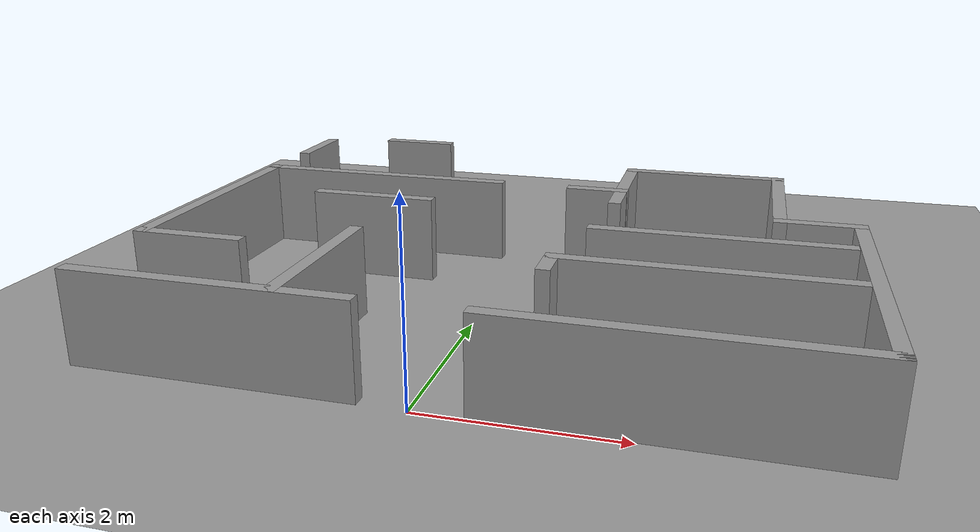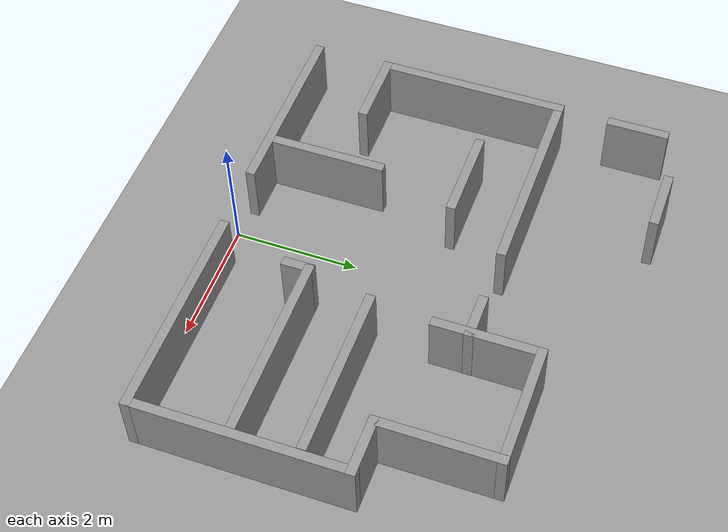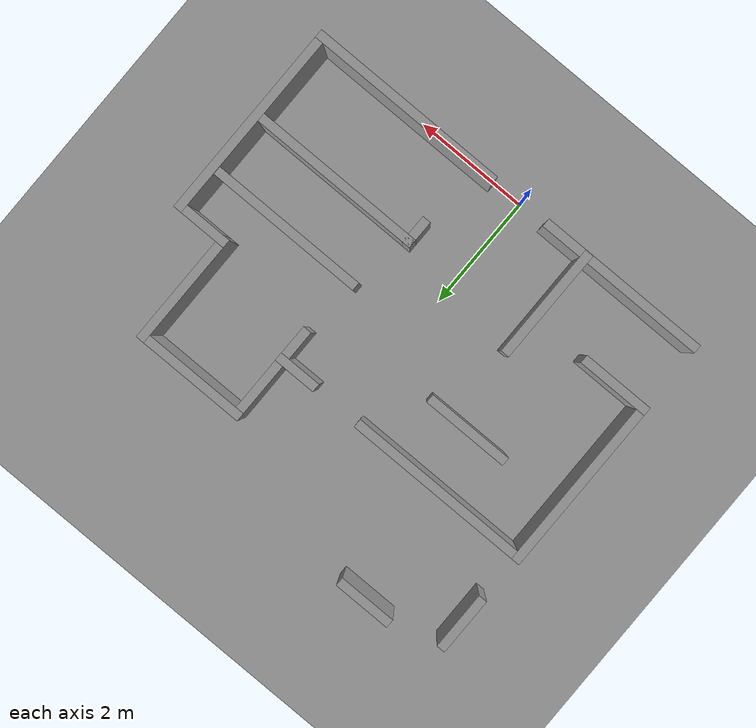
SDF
<sdf version="1.6">
 <world name="default">
  <light name="sun" type="directional">
   <pose>0 0 10 0 -0 0</pose>
   <diffuse>0.8 0.8 0.8 1</diffuse>
   <specular>0.2 0.2 0.2 1</specular>
   <attenuation>
    <range>1000</range>
    <constant>0.9</constant>
    <linear>0.01</linear>
    <quadratic>0.001</quadratic>
   </attenuation>
   <direction>0.5 0.1 -0.9</direction>
  </light>
  <scene><ambient>0.4 0.4 0.4 1</ambient><background>0.7 0.7 0.7 1</background><shadows>1</shadows></scene>
  <physics name="default_physics" default="0" type="ode">
   <max_step_size>0.01</max_step_size>
   <real_time_factor>1</real_time_factor>
   <real_time_update_rate>100</real_time_update_rate>
  </physics>
  <model name="ground_plane_0">
   <static>1</static>
   <link name="link">
    <collision name="collision">
     <geometry><plane><normal>0 0 1</normal><size>100 100</size></plane></geometry>
     <surface><friction><ode><mu>100</mu><mu2>50</mu2></ode></friction></surface>
    </collision>
    <visual name="visual">
     <cast_shadows>0</cast_shadows>
     <geometry><plane><normal>0 0 1</normal><size>100 100</size></plane></geometry>
     <material>
      <script><uri>file://media/materials/scripts/gazebo.material</uri><name>Gazebo/Grey</name></script>
     </material>
    </visual>
    <velocity_decay><linear>0</linear><angular>0</angular></velocity_decay>
   </link>
   <pose>0.497681 0 0 0 -0 0</pose>
  </model>
  <gravity>0 0 -9.8</gravity>
  <magnetic_field>6e-06 2.3e-05 -4.2e-05</magnetic_field>
  <atmosphere type="adiabatic"/>
  <audio><device>default</device></audio>
  <spherical_coordinates>
   <surface_model>EARTH_WGS84</surface_model>
   <latitude_deg>0</latitude_deg>
   <longitude_deg>0</longitude_deg>
   <elevation>0</elevation>
   <heading_deg>0</heading_deg>
  </spherical_coordinates>
  <model name="mapa">
   <pose>0.247355 3.17522 0 0 -0 0</pose>
   <link name="Wall_101">
    <collision name="Wall_101_Collision">
     <geometry><box><size>0.75 0.15 1</size></box></geometry>
     <pose>0 0 0.5 0 -0 0</pose>
    </collision>
    <visual name="Wall_101_Visual">
     <pose>0 0 0.5 0 -0 0</pose>
     <geometry><box><size>0.75 0.15 1</size></box></geometry>
     <material>
      <script><uri>file://media/materials/scripts/gazebo.material</uri><name>Gazebo/Grey</name></script>
      <ambient>1 1 1 1</ambient>
     </material>
     <meta><layer>0</layer></meta>
    </visual>
    <pose>0.701525 1.072 0 0 -0 3.14159</pose>
   </link>
   <link name="Wall_107">
    <collision name="Wall_107_Collision">
     <geometry><box><size>1.25 0.15 1</size></box></geometry>
     <pose>0 0 0.5 0 -0 0</pose>
    </collision>
    <visual name="Wall_107_Visual">
     <pose>0 0 0.5 0 -0 0</pose>
     <geometry><box><size>1.25 0.15 1</size></box></geometry>
     <material>
      <script><uri>file://media/materials/scripts/gazebo.material</uri><name>Gazebo/Grey</name></script>
      <ambient>1 1 1 1</ambient>
     </material>
     <meta><layer>0</layer></meta>
    </visual>
    <pose>-3.13247 -1.879 0 0 -0 0</pose>
   </link>
   <link name="Wall_109">
    <collision name="Wall_109_Collision">
     <geometry><box><size>2 0.15 1</size></box></geometry>
     <pose>0 0 0.5 0 -0 0</pose>
    </collision>
    <visual name="Wall_109_Visual">
     <pose>0 0 0.5 0 -0 0</pose>
     <geometry><box><size>2 0.15 1</size></box></geometry>
     <material>
      <script><uri>file://media/materials/scripts/gazebo.material</uri><name>Gazebo/Grey</name></script>
      <ambient>1 1 1 1</ambient>
     </material>
     <meta><layer>0</layer></meta>
    </visual>
    <pose>-1.53747 -2.165 0 0 -0 -1.5708</pose>
   </link>
   <link name="Wall_111">
    <collision name="Wall_111_Collision">
     <geometry><box><size>1.5 0.15 1</size></box></geometry>
     <pose>0 0 0.5 0 -0 0</pose>
    </collision>
    <visual name="Wall_111_Visual">
     <pose>0 0 0.5 0 -0 0</pose>
     <geometry><box><size>1.5 0.15 1</size></box></geometry>
     <material>
      <script><uri>file://media/materials/scripts/gazebo.material</uri><name>Gazebo/Grey</name></script>
      <ambient>1 1 1 1</ambient>
     </material>
     <meta><layer>0</layer></meta>
    </visual>
    <pose>-1.84848 0.083 0 0 -0 3.14159</pose>
   </link>
   <link name="Wall_113">
    <collision name="Wall_113_Collision">
     <geometry><box><size>3.10662 0.15 1</size></box></geometry>
     <pose>0 0 0.5 0 -0 0</pose>
    </collision>
    <visual name="Wall_113_Visual">
     <pose>0 0 0.5 0 -0 0</pose>
     <geometry><box><size>3.10662 0.15 1</size></box></geometry>
     <material>
      <script><uri>file://media/materials/scripts/gazebo.material</uri><name>Gazebo/Grey</name></script>
      <ambient>1 1 1 1</ambient>
     </material>
     <meta><layer>0</layer></meta>
    </visual>
    <pose>-3.68248 -0.4005 0 0 -0 1.5708</pose>
   </link>
   <link name="Wall_114">
    <collision name="Wall_114_Collision">
     <geometry><box><size>3.26532 0.15 1</size></box></geometry>
     <pose>0 0 0.5 0 -0 0</pose>
    </collision>
    <visual name="Wall_114_Visual">
     <pose>0 0 0.5 0 -0 0</pose>
     <geometry><box><size>3.26532 0.15 1</size></box></geometry>
     <material>
      <script><uri>file://media/materials/scripts/gazebo.material</uri><name>Gazebo/Grey</name></script>
      <ambient>1 1 1 1</ambient>
     </material>
     <meta><layer>0</layer></meta>
    </visual>
    <pose>-2.12498 1.078 0 0 -0 0</pose>
   </link>
   <link name="Wall_116">
    <collision name="Wall_116_Collision">
     <geometry><box><size>1 0.15 1</size></box></geometry>
     <pose>0 0 0.5 0 -0 0</pose>
    </collision>
    <visual name="Wall_116_Visual">
     <pose>0 0 0.5 0 -0 0</pose>
     <geometry><box><size>1 0.15 1</size></box></geometry>
     <material>
      <script><uri>file://media/materials/scripts/gazebo.material</uri><name>Gazebo/Grey</name></script>
      <ambient>1 1 1 1</ambient>
     </material>
     <meta><layer>0</layer></meta>
    </visual>
    <pose>-3.66748 2.394 0 0 -0 1.5708</pose>
   </link>
   <link name="Wall_118">
    <collision name="Wall_118_Collision">
     <geometry><box><size>1 0.15 1</size></box></geometry>
     <pose>0 0 0.5 0 -0 0</pose>
    </collision>
    <visual name="Wall_118_Visual">
     <pose>0 0 0.5 0 -0 0</pose>
     <geometry><box><size>1 0.15 1</size></box></geometry>
     <material>
      <script><uri>file://media/materials/scripts/gazebo.material</uri><name>Gazebo/Grey</name></script>
      <ambient>1 1 1 1</ambient>
     </material>
     <meta><layer>0</layer></meta>
    </visual>
    <pose>-2.32947 3.095 0 0 -0 0</pose>
   </link>
   <link name="Wall_72">
    <collision name="Wall_72_Collision">
     <geometry><box><size>3 0.15 1</size></box></geometry>
     <pose>0 0 0.5 0 -0 0</pose>
    </collision>
    <visual name="Wall_72_Visual">
     <pose>0 0 0.5 0 -0 0</pose>
     <geometry><box><size>3 0.15 1</size></box></geometry>
     <material>
      <script><uri>file://media/materials/scripts/gazebo.material</uri><name>Gazebo/Grey</name></script>
      <ambient>1 1 1 1</ambient>
     </material>
     <meta><layer>0</layer></meta>
    </visual>
    <pose>-2.23247 -3.095 0 0 -0 3.14159</pose>
   </link>
   <link name="Wall_77">
    <collision name="Wall_77_Collision">
     <geometry><box><size>3.48522 0.15 1</size></box></geometry>
     <pose>0 0 0.5 0 -0 0</pose>
    </collision>
    <visual name="Wall_77_Visual">
     <pose>0 0 0.5 0 -0 0</pose>
     <geometry><box><size>3.48522 0.15 1</size></box></geometry>
     <material>
      <script><uri>file://media/materials/scripts/gazebo.material</uri><name>Gazebo/Grey</name></script>
      <ambient>1 1 1 1</ambient>
     </material>
     <meta><layer>0</layer></meta>
    </visual>
    <pose>2.01503 -3.08 0 0 -0 0</pose>
   </link>
   <link name="Wall_81">
    <collision name="Wall_81_Collision">
     <geometry><box><size>3.5 0.15 1</size></box></geometry>
     <pose>0 0 0.5 0 -0 0</pose>
    </collision>
    <visual name="Wall_81_Visual">
     <pose>0 0 0.5 0 -0 0</pose>
     <geometry><box><size>3.5 0.15 1</size></box></geometry>
     <material>
      <script><uri>file://media/materials/scripts/gazebo.material</uri><name>Gazebo/Grey</name></script>
      <ambient>1 1 1 1</ambient>
     </material>
     <meta><layer>0</layer></meta>
    </visual>
    <pose>3.68253 -1.405 0 0 -0 1.5708</pose>
   </link>
   <link name="Wall_82">
    <collision name="Wall_82_Collision">
     <geometry><box><size>0.98457 0.15 1</size></box></geometry>
     <pose>0 0 0.5 0 -0 0</pose>
    </collision>
    <visual name="Wall_82_Visual">
     <pose>0 0 0.5 0 -0 0</pose>
     <geometry><box><size>0.98457 0.15 1</size></box></geometry>
     <material>
      <script><uri>file://media/materials/scripts/gazebo.material</uri><name>Gazebo/Grey</name></script>
      <ambient>1 1 1 1</ambient>
     </material>
     <meta><layer>0</layer></meta>
    </visual>
    <pose>3.26503 0.27 0 0 -0 3.14159</pose>
   </link>
   <link name="Wall_83">
    <collision name="Wall_83_Collision">
     <geometry><box><size>2.03042 0.15 1</size></box></geometry>
     <pose>0 0 0.5 0 -0 0</pose>
    </collision>
    <visual name="Wall_83_Visual">
     <pose>0 0 0.5 0 -0 0</pose>
     <geometry><box><size>2.03042 0.15 1</size></box></geometry>
     <material>
      <script><uri>file://media/materials/scripts/gazebo.material</uri><name>Gazebo/Grey</name></script>
      <ambient>1 1 1 1</ambient>
     </material>
     <meta><layer>0</layer></meta>
    </visual>
    <pose>2.84753 1.21 0 0 -0 1.5708</pose>
   </link>
   <link name="Wall_89">
    <collision name="Wall_89_Collision">
     <geometry><box><size>0.50033 0.15 1</size></box></geometry>
     <pose>0 0 0.5 0 -0 0</pose>
    </collision>
    <visual name="Wall_89_Visual">
     <pose>0 0 0.5 0 -0 0</pose>
     <geometry><box><size>0.50033 0.15 1</size></box></geometry>
     <material>
      <script><uri>file://media/materials/scripts/gazebo.material</uri><name>Gazebo/Grey</name></script>
      <ambient>1 1 1 1</ambient>
     </material>
     <meta><layer>0</layer></meta>
    </visual>
    <pose>0.682525 -1.719 0 0 -0 1.5708</pose>
   </link>
   <link name="Wall_90">
    <collision name="Wall_90_Collision">
     <geometry><box><size>3 0.15 1</size></box></geometry>
     <pose>0 0 0.5 0 -0 0</pose>
    </collision>
    <visual name="Wall_90_Visual">
     <pose>0 0 0.5 0 -0 0</pose>
     <geometry><box><size>3 0.15 1</size></box></geometry>
     <material>
      <script><uri>file://media/materials/scripts/gazebo.material</uri><name>Gazebo/Grey</name></script>
      <ambient>1 1 1 1</ambient>
     </material>
     <meta><layer>0</layer></meta>
    </visual>
    <pose>2.10752 -1.544 0 0 -0 0</pose>
   </link>
   <link name="Wall_94">
    <collision name="Wall_94_Collision">
     <geometry><box><size>2.75 0.15 1</size></box></geometry>
     <pose>0 0 0.5 0 -0 0</pose>
    </collision>
    <visual name="Wall_94_Visual">
     <pose>0 0 0.5 0 -0 0</pose>
     <geometry><box><size>2.75 0.15 1</size></box></geometry>
     <material>
      <script><uri>file://media/materials/scripts/gazebo.material</uri><name>Gazebo/Grey</name></script>
      <ambient>1 1 1 1</ambient>
     </material>
     <meta><layer>0</layer></meta>
    </visual>
    <pose>2.22653 -0.495 0 0 -0 3.14159</pose>
   </link>
   <link name="Wall_98">
    <collision name="Wall_98_Collision">
     <geometry><box><size>2 0.15 1</size></box></geometry>
     <pose>0 0 0.5 0 -0 0</pose>
    </collision>
    <visual name="Wall_98_Visual">
     <pose>0 0 0.5 0 -0 0</pose>
     <geometry><box><size>2 0.15 1</size></box></geometry>
     <material>
      <script><uri>file://media/materials/scripts/gazebo.material</uri><name>Gazebo/Grey</name></script>
      <ambient>1 1 1 1</ambient>
     </material>
     <meta><layer>0</layer></meta>
    </visual>
    <pose>1.92253 2.15 0 0 -0 3.14159</pose>
   </link>
   <link name="Wall_99">
    <collision name="Wall_99_Collision">
     <geometry><box><size>1.75 0.15 1</size></box></geometry>
     <pose>0 0 0.5 0 -0 0</pose>
    </collision>
    <visual name="Wall_99_Visual">
     <pose>0 0 0.5 0 -0 0</pose>
     <geometry><box><size>1.75 0.15 1</size></box></geometry>
     <material>
      <script><uri>file://media/materials/scripts/gazebo.material</uri><name>Gazebo/Grey</name></script>
      <ambient>1 1 1 1</ambient>
     </material>
     <meta><layer>0</layer></meta>
    </visual>
    <pose>0.997525 1.35 0 0 -0 -1.5708</pose>
   </link>
   <static>1</static>
  </model>
 </world>
</sdf>
